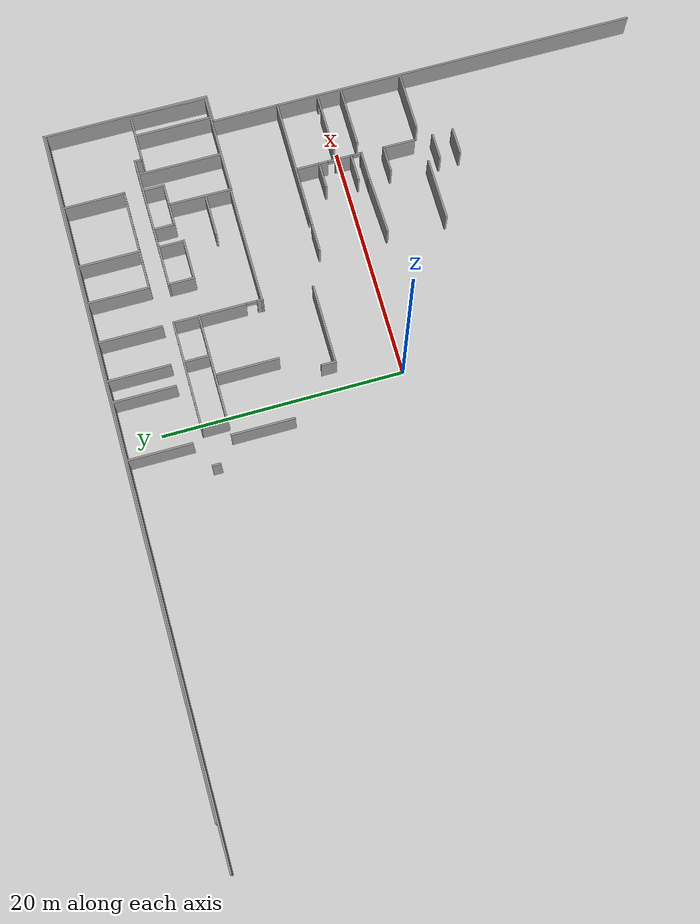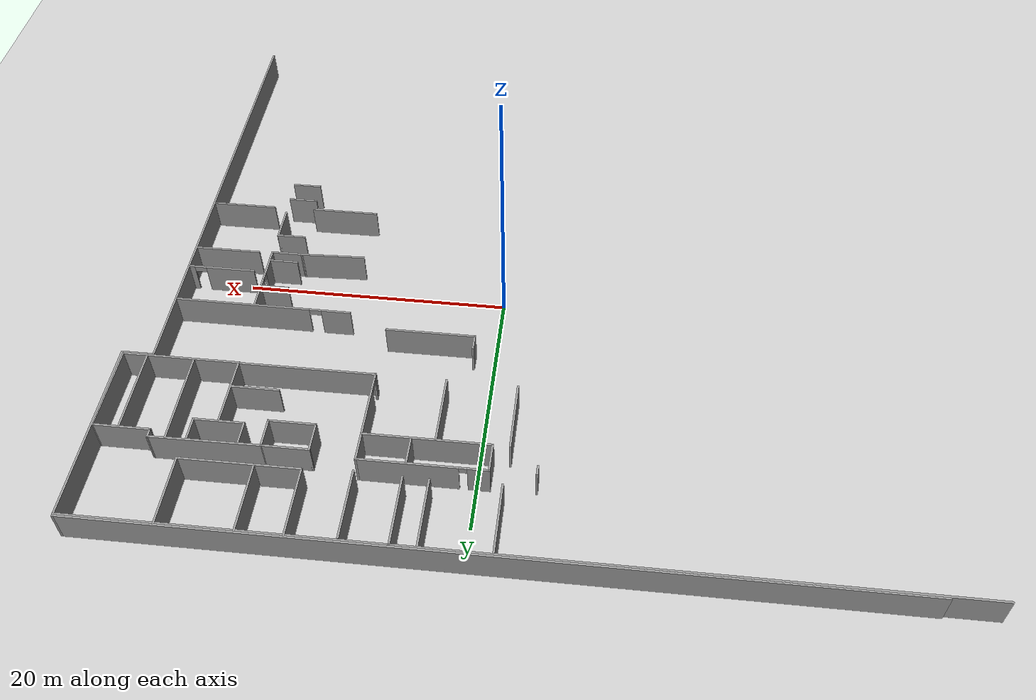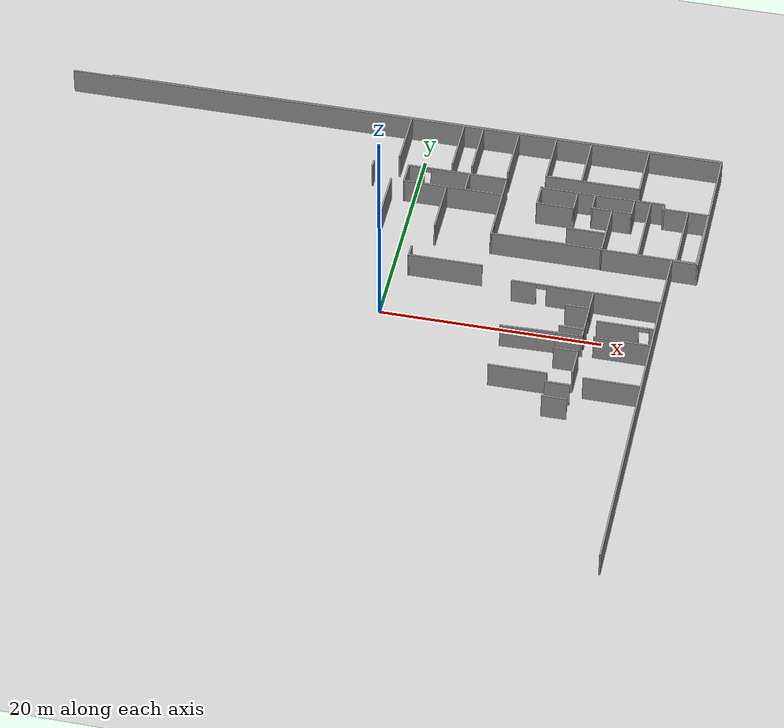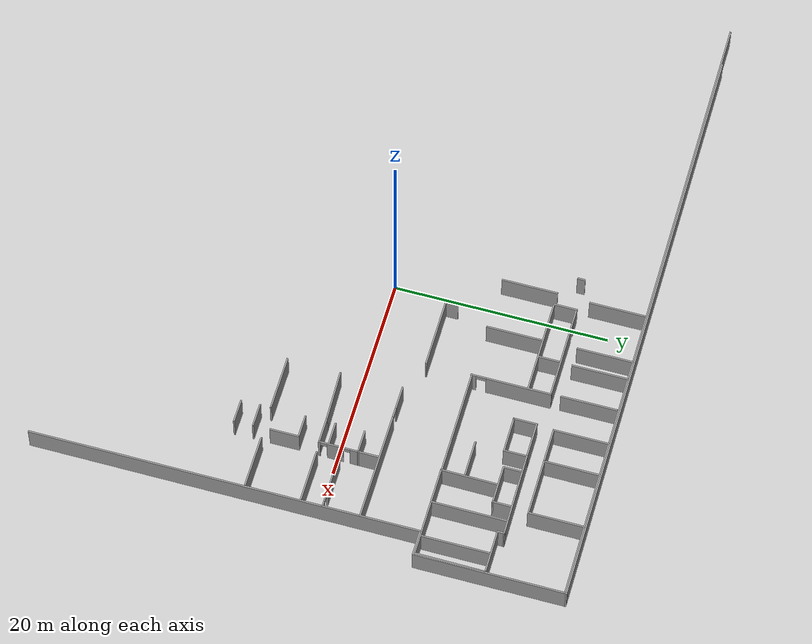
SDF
<sdf version="1.6">
 <world name="default">
  <model name="ground_plane">
   <static>1</static>
   <link name="link">
    <collision name="collision">
     <geometry><plane><normal>0 0 1</normal><size>100 100</size></plane></geometry>
     <surface><friction><ode><mu>100</mu><mu2>50</mu2></ode></friction></surface>
    </collision>
    <visual name="visual">
     <cast_shadows>0</cast_shadows>
     <geometry><plane><normal>0 0 1</normal><size>100 100</size></plane></geometry>
     <material>
      <script><uri>file://media/materials/scripts/gazebo.material</uri><name>Gazebo/Grey</name></script>
     </material>
    </visual>
   </link>
  </model>
  <model name="se1floor1">
   <pose>-5.19256 -0.852459 0 0 -0 0</pose>
   <link name="Wall_10">
    <collision name="Wall_10_Collision">
     <geometry><box><size>2.5 0.15 2.5</size></box></geometry>
     <pose>0 0 1.25 0 -0 0</pose>
    </collision>
    <visual name="Wall_10_Visual">
     <pose>0 0 1.25 0 -0 0</pose>
     <geometry><box><size>2.5 0.15 2.5</size></box></geometry>
     <material>
      <script><uri>file://media/materials/scripts/gazebo.material</uri><name>Gazebo/Grey</name></script>
      <ambient>1 1 1 1</ambient>
     </material>
     <meta><layer>0</layer></meta>
    </visual>
    <pose>30.975 10.175 0 0 -0 0</pose>
   </link>
   <link name="Wall_100">
    <collision name="Wall_100_Collision">
     <geometry><box><size>5.25 0.15 2.5</size></box></geometry>
     <pose>0 0 1.25 0 -0 0</pose>
    </collision>
    <visual name="Wall_100_Visual">
     <pose>0 0 1.25 0 -0 0</pose>
     <geometry><box><size>5.25 0.15 2.5</size></box></geometry>
     <material>
      <script><uri>file://media/materials/scripts/gazebo.material</uri><name>Gazebo/Grey</name></script>
      <ambient>1 1 1 1</ambient>
     </material>
     <meta><layer>0</layer></meta>
    </visual>
    <pose>25.4403 21.3628 0 0 -0 1.5708</pose>
   </link>
   <link name="Wall_103">
    <collision name="Wall_103_Collision">
     <geometry><box><size>2.25 0.15 2.5</size></box></geometry>
     <pose>0 0 1.25 0 -0 0</pose>
    </collision>
    <visual name="Wall_103_Visual">
     <pose>0 0 1.25 0 -0 0</pose>
     <geometry><box><size>2.25 0.15 2.5</size></box></geometry>
     <material>
      <script><uri>file://media/materials/scripts/gazebo.material</uri><name>Gazebo/Grey</name></script>
      <ambient>1 1 1 1</ambient>
     </material>
     <meta><layer>0</layer></meta>
    </visual>
    <pose>16.6798 16.175 0 0 0 -1.5708</pose>
   </link>
   <link name="Wall_104">
    <collision name="Wall_104_Collision">
     <geometry><box><size>3.5 0.15 2.5</size></box></geometry>
     <pose>0 0 1.25 0 -0 0</pose>
    </collision>
    <visual name="Wall_104_Visual">
     <pose>0 0 1.25 0 -0 0</pose>
     <geometry><box><size>3.5 0.15 2.5</size></box></geometry>
     <material>
      <script><uri>file://media/materials/scripts/gazebo.material</uri><name>Gazebo/Grey</name></script>
      <ambient>1 1 1 1</ambient>
     </material>
     <meta><layer>0</layer></meta>
    </visual>
    <pose>18.3548 15.125 0 0 -0 0</pose>
   </link>
   <link name="Wall_105">
    <collision name="Wall_105_Collision">
     <geometry><box><size>2.25 0.15 2.5</size></box></geometry>
     <pose>0 0 1.25 0 -0 0</pose>
    </collision>
    <visual name="Wall_105_Visual">
     <pose>0 0 1.25 0 -0 0</pose>
     <geometry><box><size>2.25 0.15 2.5</size></box></geometry>
     <material>
      <script><uri>file://media/materials/scripts/gazebo.material</uri><name>Gazebo/Grey</name></script>
      <ambient>1 1 1 1</ambient>
     </material>
     <meta><layer>0</layer></meta>
    </visual>
    <pose>20.0298 16.175 0 0 -0 1.5708</pose>
   </link>
   <link name="Wall_106">
    <collision name="Wall_106_Collision">
     <geometry><box><size>3.5 0.15 2.5</size></box></geometry>
     <pose>0 0 1.25 0 -0 0</pose>
    </collision>
    <visual name="Wall_106_Visual">
     <pose>0 0 1.25 0 -0 0</pose>
     <geometry><box><size>3.5 0.15 2.5</size></box></geometry>
     <material>
      <script><uri>file://media/materials/scripts/gazebo.material</uri><name>Gazebo/Grey</name></script>
      <ambient>1 1 1 1</ambient>
     </material>
     <meta><layer>0</layer></meta>
    </visual>
    <pose>18.3548 17.225 0 0 -0 3.14159</pose>
   </link>
   <link name="Wall_108">
    <collision name="Wall_108_Collision">
     <geometry><box><size>5.29673 0.15 2.5</size></box></geometry>
     <pose>0 0 1.25 0 -0 0</pose>
    </collision>
    <visual name="Wall_108_Visual">
     <pose>0 0 1.25 0 -0 0</pose>
     <geometry><box><size>5.29673 0.15 2.5</size></box></geometry>
     <material>
      <script><uri>file://media/materials/scripts/gazebo.material</uri><name>Gazebo/Grey</name></script>
      <ambient>1 1 1 1</ambient>
     </material>
     <meta><layer>0</layer></meta>
    </visual>
    <pose>23.4514 12.8687 0 0 0 -1.57984</pose>
   </link>
   <link name="Wall_109">
    <collision name="Wall_109_Collision">
     <geometry><box><size>8.75 0.15 2.5</size></box></geometry>
     <pose>0 0 1.25 0 -0 0</pose>
    </collision>
    <visual name="Wall_109_Visual">
     <pose>0 0 1.25 0 -0 0</pose>
     <geometry><box><size>8.75 0.15 2.5</size></box></geometry>
     <material>
      <script><uri>file://media/materials/scripts/gazebo.material</uri><name>Gazebo/Grey</name></script>
      <ambient>1 1 1 1</ambient>
     </material>
     <meta><layer>0</layer></meta>
    </visual>
    <pose>27.7281 10.2954 0 0 -0 0</pose>
   </link>
   <link name="Wall_11">
    <collision name="Wall_11_Collision">
     <geometry><box><size>14 0.15 2.5</size></box></geometry>
     <pose>0 0 1.25 0 -0 0</pose>
    </collision>
    <visual name="Wall_11_Visual">
     <pose>0 0 1.25 0 -0 0</pose>
     <geometry><box><size>14 0.15 2.5</size></box></geometry>
     <material>
      <script><uri>file://media/materials/scripts/gazebo.material</uri><name>Gazebo/Grey</name></script>
      <ambient>1 1 1 1</ambient>
     </material>
     <meta><layer>0</layer></meta>
    </visual>
    <pose>32.15 17.1 0 0 -0 1.5708</pose>
   </link>
   <link name="Wall_110">
    <collision name="Wall_110_Collision">
     <geometry><box><size>6.54669 0.15 2.5</size></box></geometry>
     <pose>0 0 1.25 0 -0 0</pose>
    </collision>
    <visual name="Wall_110_Visual">
     <pose>0 0 1.25 0 -0 0</pose>
     <geometry><box><size>6.54669 0.15 2.5</size></box></geometry>
     <material>
      <script><uri>file://media/materials/scripts/gazebo.material</uri><name>Gazebo/Grey</name></script>
      <ambient>1 1 1 1</ambient>
     </material>
     <meta><layer>0</layer></meta>
    </visual>
    <pose>32.0514 13.4937 0 0 -0 1.56352</pose>
   </link>
   <link name="Wall_111">
    <collision name="Wall_111_Collision">
     <geometry><box><size>4.25 0.15 2.5</size></box></geometry>
     <pose>0 0 1.25 0 -0 0</pose>
    </collision>
    <visual name="Wall_111_Visual">
     <pose>0 0 1.25 0 -0 0</pose>
     <geometry><box><size>4.25 0.15 2.5</size></box></geometry>
     <material>
      <script><uri>file://media/materials/scripts/gazebo.material</uri><name>Gazebo/Grey</name></script>
      <ambient>1 1 1 1</ambient>
     </material>
     <meta><layer>0</layer></meta>
    </visual>
    <pose>30.0246 16.6919 0 0 -0 3.14159</pose>
   </link>
   <link name="Wall_112">
    <collision name="Wall_112_Collision">
     <geometry><box><size>0.75 0.15 2.5</size></box></geometry>
     <pose>0 0 1.25 0 -0 0</pose>
    </collision>
    <visual name="Wall_112_Visual">
     <pose>0 0 1.25 0 -0 0</pose>
     <geometry><box><size>0.75 0.15 2.5</size></box></geometry>
     <material>
      <script><uri>file://media/materials/scripts/gazebo.material</uri><name>Gazebo/Grey</name></script>
      <ambient>1 1 1 1</ambient>
     </material>
     <meta><layer>0</layer></meta>
    </visual>
    <pose>27.9746 16.9919 0 0 -0 1.5708</pose>
   </link>
   <link name="Wall_114">
    <collision name="Wall_114_Collision">
     <geometry><box><size>8.0951 0.15 2.5</size></box></geometry>
     <pose>0 0 1.25 0 -0 0</pose>
    </collision>
    <visual name="Wall_114_Visual">
     <pose>0 0 1.25 0 -0 0</pose>
     <geometry><box><size>8.0951 0.15 2.5</size></box></geometry>
     <material>
      <script><uri>file://media/materials/scripts/gazebo.material</uri><name>Gazebo/Grey</name></script>
      <ambient>1 1 1 1</ambient>
     </material>
     <meta><layer>0</layer></meta>
    </visual>
    <pose>24.0022 17.2585 0 0 0 -3.13317</pose>
   </link>
   <link name="Wall_116">
    <collision name="Wall_116_Collision">
     <geometry><box><size>1.75 0.15 2.5</size></box></geometry>
     <pose>0 0 1.25 0 -0 0</pose>
    </collision>
    <visual name="Wall_116_Visual">
     <pose>0 0 1.25 0 -0 0</pose>
     <geometry><box><size>1.75 0.15 2.5</size></box></geometry>
     <material>
      <script><uri>file://media/materials/scripts/gazebo.material</uri><name>Gazebo/Grey</name></script>
      <ambient>1 1 1 1</ambient>
     </material>
     <meta><layer>0</layer></meta>
    </visual>
    <pose>21.6555 16.318 0 0 0 -1.5708</pose>
   </link>
   <link name="Wall_117">
    <collision name="Wall_117_Collision">
     <geometry><box><size>3.75 0.15 2.5</size></box></geometry>
     <pose>0 0 1.25 0 -0 0</pose>
    </collision>
    <visual name="Wall_117_Visual">
     <pose>0 0 1.25 0 -0 0</pose>
     <geometry><box><size>3.75 0.15 2.5</size></box></geometry>
     <material>
      <script><uri>file://media/materials/scripts/gazebo.material</uri><name>Gazebo/Grey</name></script>
      <ambient>1 1 1 1</ambient>
     </material>
     <meta><layer>0</layer></meta>
    </visual>
    <pose>23.4555 15.518 0 0 -0 0</pose>
   </link>
   <link name="Wall_118">
    <collision name="Wall_118_Collision">
     <geometry><box><size>1.75 0.15 2.5</size></box></geometry>
     <pose>0 0 1.25 0 -0 0</pose>
    </collision>
    <visual name="Wall_118_Visual">
     <pose>0 0 1.25 0 -0 0</pose>
     <geometry><box><size>1.75 0.15 2.5</size></box></geometry>
     <material>
      <script><uri>file://media/materials/scripts/gazebo.material</uri><name>Gazebo/Grey</name></script>
      <ambient>1 1 1 1</ambient>
     </material>
     <meta><layer>0</layer></meta>
    </visual>
    <pose>25.2555 16.318 0 0 -0 1.5708</pose>
   </link>
   <link name="Wall_12">
    <collision name="Wall_12_Collision">
     <geometry><box><size>57.5 0.15 2.5</size></box></geometry>
     <pose>0 0 1.25 0 -0 0</pose>
    </collision>
    <visual name="Wall_12_Visual">
     <pose>0 0 1.25 0 -0 0</pose>
     <geometry><box><size>57.5 0.15 2.5</size></box></geometry>
     <material>
      <script><uri>file://media/materials/scripts/gazebo.material</uri><name>Gazebo/Grey</name></script>
      <ambient>1 1 1 1</ambient>
     </material>
     <meta><layer>0</layer></meta>
    </visual>
    <pose>3.475 24.025 0 0 -0 3.14159</pose>
   </link>
   <link name="Wall_120">
    <collision name="Wall_120_Collision">
     <geometry><box><size>7 0.15 2.5</size></box></geometry>
     <pose>0 0 1.25 0 -0 0</pose>
    </collision>
    <visual name="Wall_120_Visual">
     <pose>0 0 1.25 0 -0 0</pose>
     <geometry><box><size>7 0.15 2.5</size></box></geometry>
     <material>
      <script><uri>file://media/materials/scripts/gazebo.material</uri><name>Gazebo/Grey</name></script>
      <ambient>1 1 1 1</ambient>
     </material>
     <meta><layer>0</layer></meta>
    </visual>
    <pose>26.7383 13.8017 0 0 -0 1.5708</pose>
   </link>
   <link name="Wall_122">
    <collision name="Wall_122_Collision">
     <geometry><box><size>6.25 0.15 2.5</size></box></geometry>
     <pose>0 0 1.25 0 -0 0</pose>
    </collision>
    <visual name="Wall_122_Visual">
     <pose>0 0 1.25 0 -0 0</pose>
     <geometry><box><size>6.25 0.15 2.5</size></box></geometry>
     <material>
      <script><uri>file://media/materials/scripts/gazebo.material</uri><name>Gazebo/Grey</name></script>
      <ambient>1 1 1 1</ambient>
     </material>
     <meta><layer>0</layer></meta>
    </visual>
    <pose>30.2159 13.4795 0 0 0 -1.5708</pose>
   </link>
   <link name="Wall_124">
    <collision name="Wall_124_Collision">
     <geometry><box><size>5.25 0.15 2.5</size></box></geometry>
     <pose>0 0 1.25 0 -0 0</pose>
    </collision>
    <visual name="Wall_124_Visual">
     <pose>0 0 1.25 0 -0 0</pose>
     <geometry><box><size>5.25 0.15 2.5</size></box></geometry>
     <material>
      <script><uri>file://media/materials/scripts/gazebo.material</uri><name>Gazebo/Grey</name></script>
      <ambient>1 1 1 1</ambient>
     </material>
     <meta><layer>0</layer></meta>
    </visual>
    <pose>20.104 21.3628 0 0 0 -1.5708</pose>
   </link>
   <link name="Wall_130">
    <pose>23.0675 4.71196 0 0 0 -0.005198</pose>
    <visual name="Wall_130_Visual_0">
     <pose>-5.6204 0 1.25 0 -0 0</pose>
     <geometry><box><size>2.2597 0.15 2.5</size></box></geometry>
     <material>
      <script><uri>file://media/materials/scripts/gazebo.material</uri><name>Gazebo/Grey</name></script>
      <ambient>1 1 1 1</ambient>
     </material>
     <meta><layer>0</layer></meta>
    </visual>
    <collision name="Wall_130_Collision_0">
     <geometry><box><size>2.2597 0.15 2.5</size></box></geometry>
     <pose>-5.6204 0 1.25 0 -0 0</pose>
    </collision>
    <visual name="Wall_130_Visual_1">
     <pose>1.57985 0 1.25 0 -0 0</pose>
     <geometry><box><size>10.3408 0.15 2.5</size></box></geometry>
     <material>
      <script><uri>file://media/materials/scripts/gazebo.material</uri><name>Gazebo/Grey</name></script>
      <ambient>1 1 1 1</ambient>
     </material>
     <meta><layer>0</layer></meta>
    </visual>
    <collision name="Wall_130_Collision_1">
     <geometry><box><size>10.3408 0.15 2.5</size></box></geometry>
     <pose>1.57985 0 1.25 0 -0 0</pose>
    </collision>
    <visual name="Wall_130_Visual_2">
     <pose>-4.04055 0 2.25 0 -0 0</pose>
     <geometry><box><size>0.9 0.15 0.5</size></box></geometry>
     <material>
      <script><uri>file://media/materials/scripts/gazebo.material</uri><name>Gazebo/Grey</name></script>
      <ambient>1 1 1 1</ambient>
     </material>
     <meta><layer>0</layer></meta>
    </visual>
    <collision name="Wall_130_Collision_2">
     <geometry><box><size>0.9 0.15 0.5</size></box></geometry>
     <pose>-4.04055 0 2.25 0 -0 0</pose>
    </collision>
   </link>
   <link name="Wall_137">
    <collision name="Wall_137_Collision">
     <geometry><box><size>5.02582 0.15 2.5</size></box></geometry>
     <pose>0 0 1.25 0 -0 0</pose>
    </collision>
    <visual name="Wall_137_Visual">
     <pose>0 0 1.25 0 -0 0</pose>
     <geometry><box><size>5.02582 0.15 2.5</size></box></geometry>
     <material>
      <script><uri>file://media/materials/scripts/gazebo.material</uri><name>Gazebo/Grey</name></script>
      <ambient>1 1 1 1</ambient>
     </material>
     <meta><layer>0</layer></meta>
    </visual>
    <pose>18.9104 -0.95308 0 0 -0 0.033214</pose>
   </link>
   <link name="Wall_139">
    <collision name="Wall_139_Collision">
     <geometry><box><size>5.25 0.15 2.5</size></box></geometry>
     <pose>0 0 1.25 0 -0 0</pose>
    </collision>
    <visual name="Wall_139_Visual">
     <pose>0 0 1.25 0 -0 0</pose>
     <geometry><box><size>5.25 0.15 2.5</size></box></geometry>
     <material>
      <script><uri>file://media/materials/scripts/gazebo.material</uri><name>Gazebo/Grey</name></script>
      <ambient>1 1 1 1</ambient>
     </material>
     <meta><layer>0</layer></meta>
    </visual>
    <pose>18.9425 -5.99765 0 0 -0 0</pose>
   </link>
   <link name="Wall_148">
    <pose>27.2423 1.24434 0 0 -0 0</pose>
    <visual name="Wall_148_Visual_0">
     <pose>-0.727533 0 1.25 0 -0 0</pose>
     <geometry><box><size>3.79493 0.15 2.5</size></box></geometry>
     <material>
      <script><uri>file://media/materials/scripts/gazebo.material</uri><name>Gazebo/Grey</name></script>
      <ambient>1 1 1 1</ambient>
     </material>
     <meta><layer>0</layer></meta>
    </visual>
    <collision name="Wall_148_Collision_0">
     <geometry><box><size>3.79493 0.15 2.5</size></box></geometry>
     <pose>-0.727533 0 1.25 0 -0 0</pose>
    </collision>
    <visual name="Wall_148_Visual_1">
     <pose>2.34747 0 1.25 0 -0 0</pose>
     <geometry><box><size>0.555066 0.15 2.5</size></box></geometry>
     <material>
      <script><uri>file://media/materials/scripts/gazebo.material</uri><name>Gazebo/Grey</name></script>
      <ambient>1 1 1 1</ambient>
     </material>
     <meta><layer>0</layer></meta>
    </visual>
    <collision name="Wall_148_Collision_1">
     <geometry><box><size>0.555066 0.15 2.5</size></box></geometry>
     <pose>2.34747 0 1.25 0 -0 0</pose>
    </collision>
    <visual name="Wall_148_Visual_2">
     <pose>1.61993 0 2.25 0 -0 0</pose>
     <geometry><box><size>0.9 0.15 0.5</size></box></geometry>
     <material>
      <script><uri>file://media/materials/scripts/gazebo.material</uri><name>Gazebo/Grey</name></script>
      <ambient>1 1 1 1</ambient>
     </material>
     <meta><layer>0</layer></meta>
    </visual>
    <collision name="Wall_148_Collision_2">
     <geometry><box><size>0.9 0.15 0.5</size></box></geometry>
     <pose>1.61993 0 2.25 0 -0 0</pose>
    </collision>
   </link>
   <link name="Wall_150">
    <collision name="Wall_150_Collision">
     <geometry><box><size>5 0.15 2.5</size></box></geometry>
     <pose>0 0 1.25 0 -0 0</pose>
    </collision>
    <visual name="Wall_150_Visual">
     <pose>0 0 1.25 0 -0 0</pose>
     <geometry><box><size>5 0.15 2.5</size></box></geometry>
     <material>
      <script><uri>file://media/materials/scripts/gazebo.material</uri><name>Gazebo/Grey</name></script>
      <ambient>1 1 1 1</ambient>
     </material>
     <meta><layer>0</layer></meta>
    </visual>
    <pose>27.1987 -0.789925 0 0 -0 0</pose>
   </link>
   <link name="Wall_152">
    <collision name="Wall_152_Collision">
     <geometry><box><size>5 0.15 2.5</size></box></geometry>
     <pose>0 0 1.25 0 -0 0</pose>
    </collision>
    <visual name="Wall_152_Visual">
     <pose>0 0 1.25 0 -0 0</pose>
     <geometry><box><size>5 0.15 2.5</size></box></geometry>
     <material>
      <script><uri>file://media/materials/scripts/gazebo.material</uri><name>Gazebo/Grey</name></script>
      <ambient>1 1 1 1</ambient>
     </material>
     <meta><layer>0</layer></meta>
    </visual>
    <pose>27.1987 -5.91627 0 0 -0 0</pose>
   </link>
   <link name="Wall_174">
    <collision name="Wall_174_Collision">
     <geometry><box><size>2.25 0.15 2.5</size></box></geometry>
     <pose>0 0 1.25 0 -0 0</pose>
    </collision>
    <visual name="Wall_174_Visual">
     <pose>0 0 1.25 0 -0 0</pose>
     <geometry><box><size>2.25 0.15 2.5</size></box></geometry>
     <material>
      <script><uri>file://media/materials/scripts/gazebo.material</uri><name>Gazebo/Grey</name></script>
      <ambient>1 1 1 1</ambient>
     </material>
     <meta><layer>0</layer></meta>
    </visual>
    <pose>22.6926 -8.74176 0 0 -0 3.14159</pose>
   </link>
   <link name="Wall_184">
    <collision name="Wall_184_Collision">
     <geometry><box><size>2 0.15 2.5</size></box></geometry>
     <pose>0 0 1.25 0 -0 0</pose>
    </collision>
    <visual name="Wall_184_Visual">
     <pose>0 0 1.25 0 -0 0</pose>
     <geometry><box><size>2 0.15 2.5</size></box></geometry>
     <material>
      <script><uri>file://media/materials/scripts/gazebo.material</uri><name>Gazebo/Grey</name></script>
      <ambient>1 1 1 1</ambient>
     </material>
     <meta><layer>0</layer></meta>
    </visual>
    <pose>23.7131 3.65787 0 0 -0 1.5708</pose>
   </link>
   <link name="Wall_186">
    <collision name="Wall_186_Collision">
     <geometry><box><size>2.25 0.15 2.5</size></box></geometry>
     <pose>0 0 1.25 0 -0 0</pose>
    </collision>
    <visual name="Wall_186_Visual">
     <pose>0 0 1.25 0 -0 0</pose>
     <geometry><box><size>2.25 0.15 2.5</size></box></geometry>
     <material>
      <script><uri>file://media/materials/scripts/gazebo.material</uri><name>Gazebo/Grey</name></script>
      <ambient>1 1 1 1</ambient>
     </material>
     <meta><layer>0</layer></meta>
    </visual>
    <pose>22.6631 2.73287 0 0 -0 3.14159</pose>
   </link>
   <link name="Wall_188">
    <pose>23.7051 0.930372 0 0 0 -1.57528</pose>
    <visual name="Wall_188_Visual_0">
     <pose>-1.47038 0 1.25 0 -0 0</pose>
     <geometry><box><size>0.815253 0.15 2.5</size></box></geometry>
     <material>
      <script><uri>file://media/materials/scripts/gazebo.material</uri><name>Gazebo/Grey</name></script>
      <ambient>1 1 1 1</ambient>
     </material>
     <meta><layer>0</layer></meta>
    </visual>
    <collision name="Wall_188_Collision_0">
     <geometry><box><size>0.815253 0.15 2.5</size></box></geometry>
     <pose>-1.47038 0 1.25 0 -0 0</pose>
    </collision>
    <visual name="Wall_188_Visual_1">
     <pose>0.29535 0 1.25 0 -0 0</pose>
     <geometry><box><size>1.51759 0.15 2.5</size></box></geometry>
     <material>
      <script><uri>file://media/materials/scripts/gazebo.material</uri><name>Gazebo/Grey</name></script>
      <ambient>1 1 1 1</ambient>
     </material>
     <meta><layer>0</layer></meta>
    </visual>
    <collision name="Wall_188_Collision_1">
     <geometry><box><size>1.51759 0.15 2.5</size></box></geometry>
     <pose>0.29535 0 1.25 0 -0 0</pose>
    </collision>
    <visual name="Wall_188_Visual_2">
     <pose>1.77724 0 1.25 0 -0 0</pose>
     <geometry><box><size>0.201525 0.15 2.5</size></box></geometry>
     <material>
      <script><uri>file://media/materials/scripts/gazebo.material</uri><name>Gazebo/Grey</name></script>
      <ambient>1 1 1 1</ambient>
     </material>
     <meta><layer>0</layer></meta>
    </visual>
    <collision name="Wall_188_Collision_2">
     <geometry><box><size>0.201525 0.15 2.5</size></box></geometry>
     <pose>1.77724 0 1.25 0 -0 0</pose>
    </collision>
    <visual name="Wall_188_Visual_3">
     <pose>-0.763098 0 2.25 0 -0 0</pose>
     <geometry><box><size>0.599305 0.15 0.5</size></box></geometry>
     <material>
      <script><uri>file://media/materials/scripts/gazebo.material</uri><name>Gazebo/Grey</name></script>
      <ambient>1 1 1 1</ambient>
     </material>
     <meta><layer>0</layer></meta>
    </visual>
    <collision name="Wall_188_Collision_3">
     <geometry><box><size>0.599305 0.15 0.5</size></box></geometry>
     <pose>-0.763098 0 2.25 0 -0 0</pose>
    </collision>
    <visual name="Wall_188_Visual_4">
     <pose>1.36531 0 2.25 0 -0 0</pose>
     <geometry><box><size>0.622332 0.15 0.5</size></box></geometry>
     <material>
      <script><uri>file://media/materials/scripts/gazebo.material</uri><name>Gazebo/Grey</name></script>
      <ambient>1 1 1 1</ambient>
     </material>
     <meta><layer>0</layer></meta>
    </visual>
    <collision name="Wall_188_Collision_4">
     <geometry><box><size>0.622332 0.15 0.5</size></box></geometry>
     <pose>1.36531 0 2.25 0 -0 0</pose>
    </collision>
   </link>
   <link name="Wall_190">
    <collision name="Wall_190_Collision">
     <geometry><box><size>2.5 0.15 2.5</size></box></geometry>
     <pose>0 0 1.25 0 -0 0</pose>
    </collision>
    <visual name="Wall_190_Visual">
     <pose>0 0 1.25 0 -0 0</pose>
     <geometry><box><size>2.5 0.15 2.5</size></box></geometry>
     <material>
      <script><uri>file://media/materials/scripts/gazebo.material</uri><name>Gazebo/Grey</name></script>
      <ambient>1 1 1 1</ambient>
     </material>
     <meta><layer>0</layer></meta>
    </visual>
    <pose>22.4989 -0.872123 0 0 -0 0</pose>
   </link>
   <link name="Wall_192">
    <collision name="Wall_192_Collision">
     <geometry><box><size>2.25 0.15 2.5</size></box></geometry>
     <pose>0 0 1.25 0 -0 0</pose>
    </collision>
    <visual name="Wall_192_Visual">
     <pose>0 0 1.25 0 -0 0</pose>
     <geometry><box><size>2.25 0.15 2.5</size></box></geometry>
     <material>
      <script><uri>file://media/materials/scripts/gazebo.material</uri><name>Gazebo/Grey</name></script>
      <ambient>1 1 1 1</ambient>
     </material>
     <meta><layer>0</layer></meta>
    </visual>
    <pose>22.6325 -2.77337 0 0 -0 0</pose>
   </link>
   <link name="Wall_193">
    <collision name="Wall_193_Collision">
     <geometry><box><size>2.75 0.15 2.5</size></box></geometry>
     <pose>0 0 1.25 0 -0 0</pose>
    </collision>
    <visual name="Wall_193_Visual">
     <pose>0 0 1.25 0 -0 0</pose>
     <geometry><box><size>2.75 0.15 2.5</size></box></geometry>
     <material>
      <script><uri>file://media/materials/scripts/gazebo.material</uri><name>Gazebo/Grey</name></script>
      <ambient>1 1 1 1</ambient>
     </material>
     <meta><layer>0</layer></meta>
    </visual>
    <pose>23.6825 -4.07337 0 0 0 -1.5708</pose>
   </link>
   <link name="Wall_195">
    <collision name="Wall_195_Collision">
     <geometry><box><size>2.25 0.15 2.5</size></box></geometry>
     <pose>0 0 1.25 0 -0 0</pose>
    </collision>
    <visual name="Wall_195_Visual">
     <pose>0 0 1.25 0 -0 0</pose>
     <geometry><box><size>2.25 0.15 2.5</size></box></geometry>
     <material>
      <script><uri>file://media/materials/scripts/gazebo.material</uri><name>Gazebo/Grey</name></script>
      <ambient>1 1 1 1</ambient>
     </material>
     <meta><layer>0</layer></meta>
    </visual>
    <pose>22.6325 -6.99482 0 0 -0 0</pose>
   </link>
   <link name="Wall_197">
    <collision name="Wall_197_Collision">
     <geometry><box><size>3.5 0.15 2.5</size></box></geometry>
     <pose>0 0 1.25 0 -0 0</pose>
    </collision>
    <visual name="Wall_197_Visual">
     <pose>0 0 1.25 0 -0 0</pose>
     <geometry><box><size>3.5 0.15 2.5</size></box></geometry>
     <material>
      <script><uri>file://media/materials/scripts/gazebo.material</uri><name>Gazebo/Grey</name></script>
      <ambient>1 1 1 1</ambient>
     </material>
     <meta><layer>0</layer></meta>
    </visual>
    <pose>21.6259 12.4529 0 0 -0 0</pose>
   </link>
   <link name="Wall_199">
    <collision name="Wall_199_Collision">
     <geometry><box><size>10.25 0.15 2.5</size></box></geometry>
     <pose>0 0 1.25 0 -0 0</pose>
    </collision>
    <visual name="Wall_199_Visual">
     <pose>0 0 1.25 0 -0 0</pose>
     <geometry><box><size>10.25 0.15 2.5</size></box></geometry>
     <material>
      <script><uri>file://media/materials/scripts/gazebo.material</uri><name>Gazebo/Grey</name></script>
      <ambient>1 1 1 1</ambient>
     </material>
     <meta><layer>0</layer></meta>
    </visual>
    <pose>18.4246 10.3419 0 0 -0 3.14159</pose>
   </link>
   <link name="Wall_2">
    <collision name="Wall_2_Collision">
     <geometry><box><size>1.25 0.15 2.5</size></box></geometry>
     <pose>0 0 1.25 0 -0 0</pose>
    </collision>
    <visual name="Wall_2_Visual">
     <pose>0 0 1.25 0 -0 0</pose>
     <geometry><box><size>1.25 0.15 2.5</size></box></geometry>
     <material>
      <script><uri>file://media/materials/scripts/gazebo.material</uri><name>Gazebo/Grey</name></script>
      <ambient>1 1 1 1</ambient>
     </material>
     <meta><layer>0</layer></meta>
    </visual>
    <pose>6.75 6.625 0 0 0 -1.5708</pose>
   </link>
   <link name="Wall_205">
    <collision name="Wall_205_Collision">
     <geometry><box><size>2.25 0.15 2.5</size></box></geometry>
     <pose>0 0 1.25 0 -0 0</pose>
    </collision>
    <visual name="Wall_205_Visual">
     <pose>0 0 1.25 0 -0 0</pose>
     <geometry><box><size>2.25 0.15 2.5</size></box></geometry>
     <material>
      <script><uri>file://media/materials/scripts/gazebo.material</uri><name>Gazebo/Grey</name></script>
      <ambient>1 1 1 1</ambient>
     </material>
     <meta><layer>0</layer></meta>
    </visual>
    <pose>22.6059 0.004727 0 0 -0 0</pose>
   </link>
   <link name="Wall_21">
    <pose>13.3922 13.9703 0 0 -0 1.5708</pose>
    <visual name="Wall_21_Visual_0">
     <pose>-3.48174 0 1.25 0 -0 0</pose>
     <geometry><box><size>0.536526 0.15 2.5</size></box></geometry>
     <material>
      <script><uri>file://media/materials/scripts/gazebo.material</uri><name>Gazebo/Grey</name></script>
      <ambient>1 1 1 1</ambient>
     </material>
     <meta><layer>0</layer></meta>
    </visual>
    <collision name="Wall_21_Collision_0">
     <geometry><box><size>0.536526 0.15 2.5</size></box></geometry>
     <pose>-3.48174 0 1.25 0 -0 0</pose>
    </collision>
    <visual name="Wall_21_Visual_1">
     <pose>0.718263 0 1.25 0 -0 0</pose>
     <geometry><box><size>6.06347 0.15 2.5</size></box></geometry>
     <material>
      <script><uri>file://media/materials/scripts/gazebo.material</uri><name>Gazebo/Grey</name></script>
      <ambient>1 1 1 1</ambient>
     </material>
     <meta><layer>0</layer></meta>
    </visual>
    <collision name="Wall_21_Collision_1">
     <geometry><box><size>6.06347 0.15 2.5</size></box></geometry>
     <pose>0.718263 0 1.25 0 -0 0</pose>
    </collision>
    <visual name="Wall_21_Visual_2">
     <pose>-2.76347 0 2.25 0 -0 0</pose>
     <geometry><box><size>0.9 0.15 0.5</size></box></geometry>
     <material>
      <script><uri>file://media/materials/scripts/gazebo.material</uri><name>Gazebo/Grey</name></script>
      <ambient>1 1 1 1</ambient>
     </material>
     <meta><layer>0</layer></meta>
    </visual>
    <collision name="Wall_21_Collision_2">
     <geometry><box><size>0.9 0.15 0.5</size></box></geometry>
     <pose>-2.76347 0 2.25 0 -0 0</pose>
    </collision>
   </link>
   <link name="Wall_22">
    <pose>8.84217 17.6453 0 0 -0 3.14159</pose>
    <visual name="Wall_22_Visual_0">
     <pose>-1.06517 0 1.25 0 -0 0</pose>
     <geometry><box><size>7.11966 0.15 2.5</size></box></geometry>
     <material>
      <script><uri>file://media/materials/scripts/gazebo.material</uri><name>Gazebo/Grey</name></script>
      <ambient>1 1 1 1</ambient>
     </material>
     <meta><layer>0</layer></meta>
    </visual>
    <collision name="Wall_22_Collision_0">
     <geometry><box><size>7.11966 0.15 2.5</size></box></geometry>
     <pose>-1.06517 0 1.25 0 -0 0</pose>
    </collision>
    <visual name="Wall_22_Visual_1">
     <pose>3.84451 0 1.25 0 -0 0</pose>
     <geometry><box><size>1.56097 0.15 2.5</size></box></geometry>
     <material>
      <script><uri>file://media/materials/scripts/gazebo.material</uri><name>Gazebo/Grey</name></script>
      <ambient>1 1 1 1</ambient>
     </material>
     <meta><layer>0</layer></meta>
    </visual>
    <collision name="Wall_22_Collision_1">
     <geometry><box><size>1.56097 0.15 2.5</size></box></geometry>
     <pose>3.84451 0 1.25 0 -0 0</pose>
    </collision>
    <visual name="Wall_22_Visual_2">
     <pose>2.77934 0 2.25 0 -0 0</pose>
     <geometry><box><size>0.569375 0.15 0.5</size></box></geometry>
     <material>
      <script><uri>file://media/materials/scripts/gazebo.material</uri><name>Gazebo/Grey</name></script>
      <ambient>1 1 1 1</ambient>
     </material>
     <meta><layer>0</layer></meta>
    </visual>
    <collision name="Wall_22_Collision_2">
     <geometry><box><size>0.569375 0.15 0.5</size></box></geometry>
     <pose>2.77934 0 2.25 0 -0 0</pose>
    </collision>
   </link>
   <link name="Wall_23">
    <collision name="Wall_23_Collision">
     <geometry><box><size>2.25 0.15 2.5</size></box></geometry>
     <pose>0 0 1.25 0 -0 0</pose>
    </collision>
    <visual name="Wall_23_Visual">
     <pose>0 0 1.25 0 -0 0</pose>
     <geometry><box><size>2.25 0.15 2.5</size></box></geometry>
     <material>
      <script><uri>file://media/materials/scripts/gazebo.material</uri><name>Gazebo/Grey</name></script>
      <ambient>1 1 1 1</ambient>
     </material>
     <meta><layer>0</layer></meta>
    </visual>
    <pose>4.29217 16.5953 0 0 0 -1.5708</pose>
   </link>
   <link name="Wall_24">
    <collision name="Wall_24_Collision">
     <geometry><box><size>9.25 0.15 2.5</size></box></geometry>
     <pose>0 0 1.25 0 -0 0</pose>
    </collision>
    <visual name="Wall_24_Visual">
     <pose>0 0 1.25 0 -0 0</pose>
     <geometry><box><size>9.25 0.15 2.5</size></box></geometry>
     <material>
      <script><uri>file://media/materials/scripts/gazebo.material</uri><name>Gazebo/Grey</name></script>
      <ambient>1 1 1 1</ambient>
     </material>
     <meta><layer>0</layer></meta>
    </visual>
    <pose>8.84217 15.5453 0 0 -0 0</pose>
   </link>
   <link name="Wall_26">
    <collision name="Wall_26_Collision">
     <geometry><box><size>2 0.15 2.5</size></box></geometry>
     <pose>0 0 1.25 0 -0 0</pose>
    </collision>
    <visual name="Wall_26_Visual">
     <pose>0 0 1.25 0 -0 0</pose>
     <geometry><box><size>2 0.15 2.5</size></box></geometry>
     <material>
      <script><uri>file://media/materials/scripts/gazebo.material</uri><name>Gazebo/Grey</name></script>
      <ambient>1 1 1 1</ambient>
     </material>
     <meta><layer>0</layer></meta>
    </visual>
    <pose>9.93849 16.5675 0 0 0 -1.5708</pose>
   </link>
   <link name="Wall_3">
    <collision name="Wall_3_Collision">
     <geometry><box><size>6.75 0.15 2.5</size></box></geometry>
     <pose>0 0 1.25 0 -0 0</pose>
    </collision>
    <visual name="Wall_3_Visual">
     <pose>0 0 1.25 0 -0 0</pose>
     <geometry><box><size>6.75 0.15 2.5</size></box></geometry>
     <material>
      <script><uri>file://media/materials/scripts/gazebo.material</uri><name>Gazebo/Grey</name></script>
      <ambient>1 1 1 1</ambient>
     </material>
     <meta><layer>0</layer></meta>
    </visual>
    <pose>10.05 6.075 0 0 -0 0</pose>
   </link>
   <link name="Wall_31">
    <collision name="Wall_31_Collision">
     <geometry><box><size>0.75 0.15 2.5</size></box></geometry>
     <pose>0 0 1.25 0 -0 0</pose>
    </collision>
    <visual name="Wall_31_Visual">
     <pose>0 0 1.25 0 -0 0</pose>
     <geometry><box><size>0.75 0.15 2.5</size></box></geometry>
     <material>
      <script><uri>file://media/materials/scripts/gazebo.material</uri><name>Gazebo/Grey</name></script>
      <ambient>1 1 1 1</ambient>
     </material>
     <meta><layer>0</layer></meta>
    </visual>
    <pose>1.05708 17.2575 0 0 -0 1.5708</pose>
   </link>
   <link name="Wall_43">
    <collision name="Wall_43_Collision">
     <geometry><box><size>5.25 0.15 2.5</size></box></geometry>
     <pose>0 0 1.25 0 -0 0</pose>
    </collision>
    <visual name="Wall_43_Visual">
     <pose>0 0 1.25 0 -0 0</pose>
     <geometry><box><size>5.25 0.15 2.5</size></box></geometry>
     <material>
      <script><uri>file://media/materials/scripts/gazebo.material</uri><name>Gazebo/Grey</name></script>
      <ambient>1 1 1 1</ambient>
     </material>
     <meta><layer>0</layer></meta>
    </visual>
    <pose>8.22641 12.9094 0 0 0 -1.5708</pose>
   </link>
   <link name="Wall_45">
    <collision name="Wall_45_Collision">
     <geometry><box><size>5.25 0.15 2.5</size></box></geometry>
     <pose>0 0 1.25 0 -0 0</pose>
    </collision>
    <visual name="Wall_45_Visual">
     <pose>0 0 1.25 0 -0 0</pose>
     <geometry><box><size>5.25 0.15 2.5</size></box></geometry>
     <material>
      <script><uri>file://media/materials/scripts/gazebo.material</uri><name>Gazebo/Grey</name></script>
      <ambient>1 1 1 1</ambient>
     </material>
     <meta><layer>0</layer></meta>
    </visual>
    <pose>3.09017 12.9629 0 0 0 -1.5708</pose>
   </link>
   <link name="Wall_74">
    <collision name="Wall_74_Collision">
     <geometry><box><size>61.25 0.15 2.5</size></box></geometry>
     <pose>0 0 1.25 0 -0 0</pose>
    </collision>
    <visual name="Wall_74_Visual">
     <pose>0 0 1.25 0 -0 0</pose>
     <geometry><box><size>61.25 0.15 2.5</size></box></geometry>
     <material>
      <script><uri>file://media/materials/scripts/gazebo.material</uri><name>Gazebo/Grey</name></script>
      <ambient>1 1 1 1</ambient>
     </material>
     <meta><layer>0</layer></meta>
    </visual>
    <pose>1.59217 23.8953 0 0 -0 0</pose>
   </link>
   <link name="Wall_79">
    <collision name="Wall_79_Collision">
     <geometry><box><size>5.25 0.15 2.5</size></box></geometry>
     <pose>0 0 1.25 0 -0 0</pose>
    </collision>
    <visual name="Wall_79_Visual">
     <pose>0 0 1.25 0 -0 0</pose>
     <geometry><box><size>5.25 0.15 2.5</size></box></geometry>
     <material>
      <script><uri>file://media/materials/scripts/gazebo.material</uri><name>Gazebo/Grey</name></script>
      <ambient>1 1 1 1</ambient>
     </material>
     <meta><layer>0</layer></meta>
    </visual>
    <pose>13.3387 21.1661 0 0 -0 1.5708</pose>
   </link>
   <link name="Wall_9">
    <collision name="Wall_9_Collision">
     <geometry><box><size>36.25 0.15 2.5</size></box></geometry>
     <pose>0 0 1.25 0 -0 0</pose>
    </collision>
    <visual name="Wall_9_Visual">
     <pose>0 0 1.25 0 -0 0</pose>
     <geometry><box><size>36.25 0.15 2.5</size></box></geometry>
     <material>
      <script><uri>file://media/materials/scripts/gazebo.material</uri><name>Gazebo/Grey</name></script>
      <ambient>1 1 1 1</ambient>
     </material>
     <meta><layer>0</layer></meta>
    </visual>
    <pose>29.8 -7.875 0 0 -0 1.5708</pose>
   </link>
   <link name="Wall_92">
    <collision name="Wall_92_Collision">
     <geometry><box><size>5.25 0.15 2.5</size></box></geometry>
     <pose>0 0 1.25 0 -0 0</pose>
    </collision>
    <visual name="Wall_92_Visual">
     <pose>0 0 1.25 0 -0 0</pose>
     <geometry><box><size>5.25 0.15 2.5</size></box></geometry>
     <material>
      <script><uri>file://media/materials/scripts/gazebo.material</uri><name>Gazebo/Grey</name></script>
      <ambient>1 1 1 1</ambient>
     </material>
     <meta><layer>0</layer></meta>
    </visual>
    <pose>3.25068 21.2023 0 0 0 -1.5708</pose>
   </link>
   <link name="Wall_94">
    <collision name="Wall_94_Collision">
     <geometry><box><size>5.25 0.15 2.5</size></box></geometry>
     <pose>0 0 1.25 0 -0 0</pose>
    </collision>
    <visual name="Wall_94_Visual">
     <pose>0 0 1.25 0 -0 0</pose>
     <geometry><box><size>5.25 0.15 2.5</size></box></geometry>
     <material>
      <script><uri>file://media/materials/scripts/gazebo.material</uri><name>Gazebo/Grey</name></script>
      <ambient>1 1 1 1</ambient>
     </material>
     <meta><layer>0</layer></meta>
    </visual>
    <pose>8.17291 21.3093 0 0 0 -1.5708</pose>
   </link>
   <link name="Wall_96">
    <collision name="Wall_96_Collision">
     <geometry><box><size>5.25 0.15 2.5</size></box></geometry>
     <pose>0 0 1.25 0 -0 0</pose>
    </collision>
    <visual name="Wall_96_Visual">
     <pose>0 0 1.25 0 -0 0</pose>
     <geometry><box><size>5.25 0.15 2.5</size></box></geometry>
     <material>
      <script><uri>file://media/materials/scripts/gazebo.material</uri><name>Gazebo/Grey</name></script>
      <ambient>1 1 1 1</ambient>
     </material>
     <meta><layer>0</layer></meta>
    </visual>
    <pose>9.99199 21.3093 0 0 0 -1.5708</pose>
   </link>
   <link name="Wall_98">
    <collision name="Wall_98_Collision">
     <geometry><box><size>5.25 0.15 2.5</size></box></geometry>
     <pose>0 0 1.25 0 -0 0</pose>
    </collision>
    <visual name="Wall_98_Visual">
     <pose>0 0 1.25 0 -0 0</pose>
     <geometry><box><size>5.25 0.15 2.5</size></box></geometry>
     <material>
      <script><uri>file://media/materials/scripts/gazebo.material</uri><name>Gazebo/Grey</name></script>
      <ambient>1 1 1 1</ambient>
     </material>
     <meta><layer>0</layer></meta>
    </visual>
    <pose>16.8403 21.3628 0 0 0 -1.5708</pose>
   </link>
   <link name="Wall_99">
    <collision name="Wall_99_Collision">
     <geometry><box><size>8.75 0.15 2.5</size></box></geometry>
     <pose>0 0 1.25 0 -0 0</pose>
    </collision>
    <visual name="Wall_99_Visual">
     <pose>0 0 1.25 0 -0 0</pose>
     <geometry><box><size>8.75 0.15 2.5</size></box></geometry>
     <material>
      <script><uri>file://media/materials/scripts/gazebo.material</uri><name>Gazebo/Grey</name></script>
      <ambient>1 1 1 1</ambient>
     </material>
     <meta><layer>0</layer></meta>
    </visual>
    <pose>21.1403 18.8128 0 0 -0 0</pose>
   </link>
   <static>1</static>
  </model>
 </world>
</sdf>
